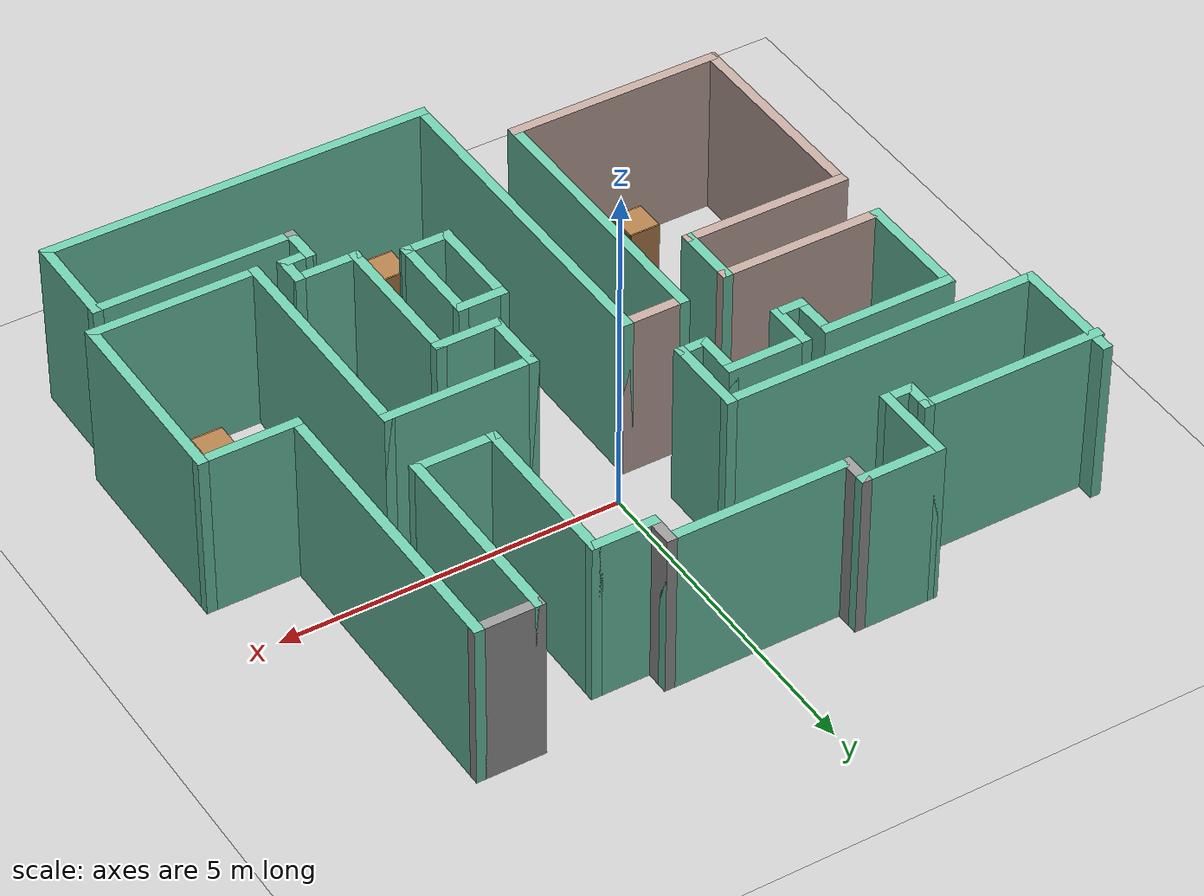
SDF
<sdf version="1.6">
 <world name="default">
  <light name="sun" type="directional">
   <pose>0 0 10 0 -0 0</pose>
   <diffuse>0.8 0.8 0.8 1</diffuse>
   <specular>0.2 0.2 0.2 1</specular>
   <attenuation>
    <range>1000</range>
    <constant>0.9</constant>
    <linear>0.01</linear>
    <quadratic>0.001</quadratic>
   </attenuation>
   <direction>-0.5 0.1 -0.9</direction>
  </light>
  <model name="ground_plane">
   <static>1</static>
   <link name="link">
    <collision name="collision">
     <geometry><plane><normal>0 0 1</normal><size>100 100</size></plane></geometry>
     <surface><friction><ode><mu>100</mu><mu2>50</mu2></ode></friction></surface>
    </collision>
    <visual name="visual">
     <cast_shadows>0</cast_shadows>
     <geometry><plane><normal>0 0 1</normal><size>100 100</size></plane></geometry>
     <material>
      <script><uri>file://media/materials/scripts/gazebo.material</uri><name>Gazebo/Grey</name></script>
     </material>
    </visual>
   </link>
  </model>
  <gravity>0 0 -9.8</gravity>
  <magnetic_field>6e-06 2.3e-05 -4.2e-05</magnetic_field>
  <atmosphere type="adiabatic"/>
  <physics name="default_physics" default="0" type="ode">
   <max_step_size>0.001</max_step_size>
   <real_time_factor>1</real_time_factor>
   <real_time_update_rate>1000</real_time_update_rate>
  </physics>
  <scene><ambient>0.4 0.4 0.4 1</ambient><background>0.7 0.7 0.7 1</background><shadows>1</shadows></scene>
  <spherical_coordinates>
   <surface_model>EARTH_WGS84</surface_model>
   <latitude_deg>0</latitude_deg>
   <longitude_deg>0</longitude_deg>
   <elevation>0</elevation>
   <heading_deg>0</heading_deg>
  </spherical_coordinates>
  <model name="map_127">
   <pose>0.044681 -1.03252 0 0 -0 0</pose>
   <link name="Wall_0">
    <collision name="Wall_0_Collision">
     <geometry><box><size>3.25 0.15 2.5</size></box></geometry>
     <pose>0 0 1.25 0 -0 0</pose>
    </collision>
    <visual name="Wall_0_Visual">
     <pose>0 0 1.25 0 -0 0</pose>
     <geometry><box><size>3.25 0.15 2.5</size></box></geometry>
     <material>
      <script><uri>file://media/materials/scripts/gazebo.material</uri><name>Gazebo/Grey</name></script>
      <ambient>0.760784 0.662745 0.627451 1</ambient>
     </material>
     <meta><layer>0</layer></meta>
    </visual>
    <pose>-2.85 -3.575 0 0 -0 3.14159</pose>
   </link>
   <link name="Wall_1">
    <collision name="Wall_1_Collision">
     <geometry><box><size>3.25 0.15 2.5</size></box></geometry>
     <pose>0 0 1.25 0 -0 0</pose>
    </collision>
    <visual name="Wall_1_Visual">
     <pose>0 0 1.25 0 -0 0</pose>
     <geometry><box><size>3.25 0.15 2.5</size></box></geometry>
     <material>
      <script><uri>file://media/materials/scripts/gazebo.material</uri><name>Gazebo/Grey</name></script>
      <ambient>0.760784 0.662745 0.627451 1</ambient>
     </material>
     <meta><layer>0</layer></meta>
    </visual>
    <pose>-4.4 -2.025 0 0 -0 1.5708</pose>
   </link>
   <link name="Wall_10">
    <collision name="Wall_10_Collision">
     <geometry><box><size>1.25 0.15 2.5</size></box></geometry>
     <pose>0 0 1.25 0 -0 0</pose>
    </collision>
    <visual name="Wall_10_Visual">
     <pose>0 0 1.25 0 -0 0</pose>
     <geometry><box><size>1.25 0.15 2.5</size></box></geometry>
     <material>
      <script><uri>file://media/materials/scripts/gazebo.material</uri><name>Gazebo/Grey</name></script>
      <ambient>0.435294 0.796078 0.67451 1</ambient>
     </material>
     <meta><layer>0</layer></meta>
    </visual>
    <pose>-1.65 1.975 0 0 -0 0</pose>
   </link>
   <link name="Wall_13">
    <collision name="Wall_13_Collision">
     <geometry><box><size>0.75 0.15 2.5</size></box></geometry>
     <pose>0 0 1.25 0 -0 0</pose>
    </collision>
    <visual name="Wall_13_Visual">
     <pose>0 0 1.25 0 -0 0</pose>
     <geometry><box><size>0.75 0.15 2.5</size></box></geometry>
     <material>
      <script><uri>file://media/materials/scripts/gazebo.material</uri><name>Gazebo/Grey</name></script>
      <ambient>0.435294 0.796078 0.67451 1</ambient>
     </material>
     <meta><layer>0</layer></meta>
    </visual>
    <pose>-1.1 1.675 0 0 -0 -1.5708</pose>
   </link>
   <link name="Wall_14">
    <collision name="Wall_14_Collision">
     <geometry><box><size>0.5 0.15 2.5</size></box></geometry>
     <pose>0 0 1.25 0 -0 0</pose>
    </collision>
    <visual name="Wall_14_Visual">
     <pose>0 0 1.25 0 -0 0</pose>
     <geometry><box><size>0.5 0.15 2.5</size></box></geometry>
     <material>
      <script><uri>file://media/materials/scripts/gazebo.material</uri><name>Gazebo/Grey</name></script>
      <ambient>0.435294 0.796078 0.67451 1</ambient>
     </material>
     <meta><layer>0</layer></meta>
    </visual>
    <pose>-0.925 1.375 0 0 -0 0</pose>
   </link>
   <link name="Wall_15">
    <collision name="Wall_15_Collision">
     <geometry><box><size>1.25 0.15 2.5</size></box></geometry>
     <pose>0 0 1.25 0 -0 0</pose>
    </collision>
    <visual name="Wall_15_Visual">
     <pose>0 0 1.25 0 -0 0</pose>
     <geometry><box><size>1.25 0.15 2.5</size></box></geometry>
     <material>
      <script><uri>file://media/materials/scripts/gazebo.material</uri><name>Gazebo/Grey</name></script>
      <ambient>0.435294 0.796078 0.67451 1</ambient>
     </material>
     <meta><layer>0</layer></meta>
    </visual>
    <pose>-0.75 1.925 0 0 -0 1.5708</pose>
   </link>
   <link name="Wall_16">
    <collision name="Wall_16_Collision">
     <geometry><box><size>4.75 0.15 2.5</size></box></geometry>
     <pose>0 0 1.25 0 -0 0</pose>
    </collision>
    <visual name="Wall_16_Visual">
     <pose>0 0 1.25 0 -0 0</pose>
     <geometry><box><size>4.75 0.15 2.5</size></box></geometry>
     <material>
      <script><uri>file://media/materials/scripts/gazebo.material</uri><name>Gazebo/Grey</name></script>
      <ambient>0.435294 0.796078 0.67451 1</ambient>
     </material>
     <meta><layer>0</layer></meta>
    </visual>
    <pose>-3.05 2.475 0 0 -0 3.14159</pose>
   </link>
   <link name="Wall_17">
    <collision name="Wall_17_Collision">
     <geometry><box><size>1.75 0.15 2.5</size></box></geometry>
     <pose>0 0 1.25 0 -0 0</pose>
    </collision>
    <visual name="Wall_17_Visual">
     <pose>0 0 1.25 0 -0 0</pose>
     <geometry><box><size>1.75 0.15 2.5</size></box></geometry>
     <material>
      <script><uri>file://media/materials/scripts/gazebo.material</uri><name>Gazebo/Grey</name></script>
      <ambient>0.435294 0.796078 0.67451 1</ambient>
     </material>
     <meta><layer>0</layer></meta>
    </visual>
    <pose>-5.35 3.275 0 0 -0 1.5708</pose>
   </link>
   <link name="Wall_19">
    <collision name="Wall_19_Collision">
     <geometry><box><size>4.25 0.15 2.5</size></box></geometry>
     <pose>0 0 1.25 0 -0 0</pose>
    </collision>
    <visual name="Wall_19_Visual">
     <pose>0 0 1.25 0 -0 0</pose>
     <geometry><box><size>4.25 0.15 2.5</size></box></geometry>
     <material>
      <script><uri>file://media/materials/scripts/gazebo.material</uri><name>Gazebo/Grey</name></script>
      <ambient>0.435294 0.796078 0.67451 1</ambient>
     </material>
     <meta><layer>0</layer></meta>
    </visual>
    <pose>-1.3 -1.525 0 0 -0 1.5708</pose>
   </link>
   <link name="Wall_2">
    <collision name="Wall_2_Collision">
     <geometry><box><size>2.5 0.15 2.5</size></box></geometry>
     <pose>0 0 1.25 0 -0 0</pose>
    </collision>
    <visual name="Wall_2_Visual">
     <pose>0 0 1.25 0 -0 0</pose>
     <geometry><box><size>2.5 0.15 2.5</size></box></geometry>
     <material>
      <script><uri>file://media/materials/scripts/gazebo.material</uri><name>Gazebo/Grey</name></script>
      <ambient>0.760784 0.662745 0.627451 1</ambient>
     </material>
     <meta><layer>0</layer></meta>
    </visual>
    <pose>-3.225 -0.475 0 0 -0 0</pose>
   </link>
   <link name="Wall_20">
    <collision name="Wall_20_Collision">
     <geometry><box><size>1 0.15 2.5</size></box></geometry>
     <pose>0 0 1.25 0 -0 0</pose>
    </collision>
    <visual name="Wall_20_Visual">
     <pose>0 0 1.25 0 -0 0</pose>
     <geometry><box><size>1 0.15 2.5</size></box></geometry>
     <material>
      <script><uri>file://media/materials/scripts/gazebo.material</uri><name>Gazebo/Grey</name></script>
      <ambient>0.760784 0.662745 0.627451 1</ambient>
     </material>
     <meta><layer>0</layer></meta>
    </visual>
    <pose>-0.875 0.525 0 0 -0 0</pose>
   </link>
   <link name="Wall_21">
    <collision name="Wall_21_Collision">
     <geometry><box><size>5.25 0.15 2.5</size></box></geometry>
     <pose>0 0 1.25 0 -0 0</pose>
    </collision>
    <visual name="Wall_21_Visual">
     <pose>0 0 1.25 0 -0 0</pose>
     <geometry><box><size>5.25 0.15 2.5</size></box></geometry>
     <material>
      <script><uri>file://media/materials/scripts/gazebo.material</uri><name>Gazebo/Grey</name></script>
      <ambient>0.435294 0.796078 0.67451 1</ambient>
     </material>
     <meta><layer>0</layer></meta>
    </visual>
    <pose>-0.45 -2.025 0 0 -0 -1.5708</pose>
   </link>
   <link name="Wall_22">
    <collision name="Wall_22_Collision">
     <geometry><box><size>5.75 0.15 2.5</size></box></geometry>
     <pose>0 0 1.25 0 -0 0</pose>
    </collision>
    <visual name="Wall_22_Visual">
     <pose>0 0 1.25 0 -0 0</pose>
     <geometry><box><size>5.75 0.15 2.5</size></box></geometry>
     <material>
      <script><uri>file://media/materials/scripts/gazebo.material</uri><name>Gazebo/Grey</name></script>
      <ambient>0.435294 0.796078 0.67451 1</ambient>
     </material>
     <meta><layer>0</layer></meta>
    </visual>
    <pose>2.35 -4.575 0 0 -0 0</pose>
   </link>
   <link name="Wall_23">
    <collision name="Wall_23_Collision">
     <geometry><box><size>1.5 0.15 2.5</size></box></geometry>
     <pose>0 0 1.25 0 -0 0</pose>
    </collision>
    <visual name="Wall_23_Visual">
     <pose>0 0 1.25 0 -0 0</pose>
     <geometry><box><size>1.5 0.15 2.5</size></box></geometry>
     <material>
      <script><uri>file://media/materials/scripts/gazebo.material</uri><name>Gazebo/Grey</name></script>
      <ambient>0.435294 0.796078 0.67451 1</ambient>
     </material>
     <meta><layer>0</layer></meta>
    </visual>
    <pose>5.15 -3.9 0 0 -0 1.5708</pose>
   </link>
   <link name="Wall_24">
    <collision name="Wall_24_Collision">
     <geometry><box><size>3 0.15 2.5</size></box></geometry>
     <pose>0 0 1.25 0 -0 0</pose>
    </collision>
    <visual name="Wall_24_Visual">
     <pose>0 0 1.25 0 -0 0</pose>
     <geometry><box><size>3 0.15 2.5</size></box></geometry>
     <material>
      <script><uri>file://media/materials/scripts/gazebo.material</uri><name>Gazebo/Grey</name></script>
      <ambient>0.435294 0.796078 0.67451 1</ambient>
     </material>
     <meta><layer>0</layer></meta>
    </visual>
    <pose>3.725 -3.225 0 0 -0 3.14159</pose>
   </link>
   <link name="Wall_25">
    <collision name="Wall_25_Collision">
     <geometry><box><size>0.25 0.15 2.5</size></box></geometry>
     <pose>0 0 1.25 0 -0 0</pose>
    </collision>
    <visual name="Wall_25_Visual">
     <pose>0 0 1.25 0 -0 0</pose>
     <geometry><box><size>0.25 0.15 2.5</size></box></geometry>
     <material>
      <script><uri>file://media/materials/scripts/gazebo.material</uri><name>Gazebo/Grey</name></script>
      <ambient>1 1 1 1</ambient>
     </material>
     <meta><layer>0</layer></meta>
    </visual>
    <pose>2.3 -3.175 0 0 -0 1.5708</pose>
   </link>
   <link name="Wall_26">
    <collision name="Wall_26_Collision">
     <geometry><box><size>0.5 0.15 2.5</size></box></geometry>
     <pose>0 0 1.25 0 -0 0</pose>
    </collision>
    <visual name="Wall_26_Visual">
     <pose>0 0 1.25 0 -0 0</pose>
     <geometry><box><size>0.5 0.15 2.5</size></box></geometry>
     <material>
      <script><uri>file://media/materials/scripts/gazebo.material</uri><name>Gazebo/Grey</name></script>
      <ambient>0.435294 0.796078 0.67451 1</ambient>
     </material>
     <meta><layer>0</layer></meta>
    </visual>
    <pose>2.3 -2.95 0 0 -0 1.5708</pose>
   </link>
   <link name="Wall_27">
    <collision name="Wall_27_Collision">
     <geometry><box><size>0.5 0.15 2.5</size></box></geometry>
     <pose>0 0 1.25 0 -0 0</pose>
    </collision>
    <visual name="Wall_27_Visual">
     <pose>0 0 1.25 0 -0 0</pose>
     <geometry><box><size>0.5 0.15 2.5</size></box></geometry>
     <material>
      <script><uri>file://media/materials/scripts/gazebo.material</uri><name>Gazebo/Grey</name></script>
      <ambient>0.435294 0.796078 0.67451 1</ambient>
     </material>
     <meta><layer>0</layer></meta>
    </visual>
    <pose>2.475 -2.775 0 0 -0 0</pose>
   </link>
   <link name="Wall_3">
    <collision name="Wall_3_Collision">
     <geometry><box><size>1 0.15 2.5</size></box></geometry>
     <pose>0 0 1.25 0 -0 0</pose>
    </collision>
    <visual name="Wall_3_Visual">
     <pose>0 0 1.25 0 -0 0</pose>
     <geometry><box><size>1 0.15 2.5</size></box></geometry>
     <material>
      <script><uri>file://media/materials/scripts/gazebo.material</uri><name>Gazebo/Grey</name></script>
      <ambient>0.435294 0.796078 0.67451 1</ambient>
     </material>
     <meta><layer>0</layer></meta>
    </visual>
    <pose>-2.05 -0.05 0 0 -0 1.5708</pose>
   </link>
   <link name="Wall_30">
    <collision name="Wall_30_Collision">
     <geometry><box><size>0.5 0.15 2.5</size></box></geometry>
     <pose>0 0 1.25 0 -0 0</pose>
    </collision>
    <visual name="Wall_30_Visual">
     <pose>0 0 1.25 0 -0 0</pose>
     <geometry><box><size>0.5 0.15 2.5</size></box></geometry>
     <material>
      <script><uri>file://media/materials/scripts/gazebo.material</uri><name>Gazebo/Grey</name></script>
      <ambient>0.435294 0.796078 0.67451 1</ambient>
     </material>
     <meta><layer>0</layer></meta>
    </visual>
    <pose>2.65 -2.6 0 0 -0 1.5708</pose>
   </link>
   <link name="Wall_31">
    <collision name="Wall_31_Collision">
     <geometry><box><size>1 0.15 2.5</size></box></geometry>
     <pose>0 0 1.25 0 -0 0</pose>
    </collision>
    <visual name="Wall_31_Visual">
     <pose>0 0 1.25 0 -0 0</pose>
     <geometry><box><size>1 0.15 2.5</size></box></geometry>
     <material>
      <script><uri>file://media/materials/scripts/gazebo.material</uri><name>Gazebo/Grey</name></script>
      <ambient>0.435294 0.796078 0.67451 1</ambient>
     </material>
     <meta><layer>0</layer></meta>
    </visual>
    <pose>2.225 -2.425 0 0 -0 3.14159</pose>
   </link>
   <link name="Wall_32">
    <collision name="Wall_32_Collision">
     <geometry><box><size>2.25 0.15 2.5</size></box></geometry>
     <pose>0 0 1.25 0 -0 0</pose>
    </collision>
    <visual name="Wall_32_Visual">
     <pose>0 0 1.25 0 -0 0</pose>
     <geometry><box><size>2.25 0.15 2.5</size></box></geometry>
     <material>
      <script><uri>file://media/materials/scripts/gazebo.material</uri><name>Gazebo/Grey</name></script>
      <ambient>0.435294 0.796078 0.67451 1</ambient>
     </material>
     <meta><layer>0</layer></meta>
    </visual>
    <pose>1.8 -1.375 0 0 -0 1.5708</pose>
   </link>
   <link name="Wall_33">
    <collision name="Wall_33_Collision">
     <geometry><box><size>1 0.15 2.5</size></box></geometry>
     <pose>0 0 1.25 0 -0 0</pose>
    </collision>
    <visual name="Wall_33_Visual">
     <pose>0 0 1.25 0 -0 0</pose>
     <geometry><box><size>1 0.15 2.5</size></box></geometry>
     <material>
      <script><uri>file://media/materials/scripts/gazebo.material</uri><name>Gazebo/Grey</name></script>
      <ambient>0.435294 0.796078 0.67451 1</ambient>
     </material>
     <meta><layer>0</layer></meta>
    </visual>
    <pose>1.375 -0.325 0 0 -0 3.14159</pose>
   </link>
   <link name="Wall_34">
    <collision name="Wall_34_Collision">
     <geometry><box><size>1 0.15 2.5</size></box></geometry>
     <pose>0 0 1.25 0 -0 0</pose>
    </collision>
    <visual name="Wall_34_Visual">
     <pose>0 0 1.25 0 -0 0</pose>
     <geometry><box><size>1 0.15 2.5</size></box></geometry>
     <material>
      <script><uri>file://media/materials/scripts/gazebo.material</uri><name>Gazebo/Grey</name></script>
      <ambient>0.435294 0.796078 0.67451 1</ambient>
     </material>
     <meta><layer>0</layer></meta>
    </visual>
    <pose>0.95 0.1 0 0 -0 1.5708</pose>
   </link>
   <link name="Wall_35">
    <collision name="Wall_35_Collision">
     <geometry><box><size>2.25 0.15 2.5</size></box></geometry>
     <pose>0 0 1.25 0 -0 0</pose>
    </collision>
    <visual name="Wall_35_Visual">
     <pose>0 0 1.25 0 -0 0</pose>
     <geometry><box><size>2.25 0.15 2.5</size></box></geometry>
     <material>
      <script><uri>file://media/materials/scripts/gazebo.material</uri><name>Gazebo/Grey</name></script>
      <ambient>0.435294 0.796078 0.67451 1</ambient>
     </material>
     <meta><layer>0</layer></meta>
    </visual>
    <pose>2 0.525 0 0 -0 0</pose>
   </link>
   <link name="Wall_36">
    <collision name="Wall_36_Collision">
     <geometry><box><size>3.5 0.15 2.5</size></box></geometry>
     <pose>0 0 1.25 0 -0 0</pose>
    </collision>
    <visual name="Wall_36_Visual">
     <pose>0 0 1.25 0 -0 0</pose>
     <geometry><box><size>3.5 0.15 2.5</size></box></geometry>
     <material>
      <script><uri>file://media/materials/scripts/gazebo.material</uri><name>Gazebo/Grey</name></script>
      <ambient>0.435294 0.796078 0.67451 1</ambient>
     </material>
     <meta><layer>0</layer></meta>
    </visual>
    <pose>3.05 -1.15 0 0 -0 -1.5708</pose>
   </link>
   <link name="Wall_37">
    <collision name="Wall_37_Collision">
     <geometry><box><size>2.5 0.15 2.5</size></box></geometry>
     <pose>0 0 1.25 0 -0 0</pose>
    </collision>
    <visual name="Wall_37_Visual">
     <pose>0 0 1.25 0 -0 0</pose>
     <geometry><box><size>2.5 0.15 2.5</size></box></geometry>
     <material>
      <script><uri>file://media/materials/scripts/gazebo.material</uri><name>Gazebo/Grey</name></script>
      <ambient>0.435294 0.796078 0.67451 1</ambient>
     </material>
     <meta><layer>0</layer></meta>
    </visual>
    <pose>4.225 -2.825 0 0 -0 0</pose>
   </link>
   <link name="Wall_38">
    <collision name="Wall_38_Collision">
     <geometry><box><size>3 0.15 2.5</size></box></geometry>
     <pose>0 0 1.25 0 -0 0</pose>
    </collision>
    <visual name="Wall_38_Visual">
     <pose>0 0 1.25 0 -0 0</pose>
     <geometry><box><size>3 0.15 2.5</size></box></geometry>
     <material>
      <script><uri>file://media/materials/scripts/gazebo.material</uri><name>Gazebo/Grey</name></script>
      <ambient>0.435294 0.796078 0.67451 1</ambient>
     </material>
     <meta><layer>0</layer></meta>
    </visual>
    <pose>5.4 -1.4 0 0 -0 1.5708</pose>
   </link>
   <link name="Wall_39">
    <collision name="Wall_39_Collision">
     <geometry><box><size>1.5 0.15 2.5</size></box></geometry>
     <pose>0 0 1.25 0 -0 0</pose>
    </collision>
    <visual name="Wall_39_Visual">
     <pose>0 0 1.25 0 -0 0</pose>
     <geometry><box><size>1.5 0.15 2.5</size></box></geometry>
     <material>
      <script><uri>file://media/materials/scripts/gazebo.material</uri><name>Gazebo/Grey</name></script>
      <ambient>0.435294 0.796078 0.67451 1</ambient>
     </material>
     <meta><layer>0</layer></meta>
    </visual>
    <pose>4.725 0.025 0 0 -0 3.14159</pose>
   </link>
   <link name="Wall_4">
    <collision name="Wall_4_Collision">
     <geometry><box><size>2.5 0.15 2.5</size></box></geometry>
     <pose>0 0 1.25 0 -0 0</pose>
    </collision>
    <visual name="Wall_4_Visual">
     <pose>0 0 1.25 0 -0 0</pose>
     <geometry><box><size>2.5 0.15 2.5</size></box></geometry>
     <material>
      <script><uri>file://media/materials/scripts/gazebo.material</uri><name>Gazebo/Grey</name></script>
      <ambient>0.760784 0.662745 0.627451 1</ambient>
     </material>
     <meta><layer>0</layer></meta>
    </visual>
    <pose>-3.225 0.375 0 0 -0 3.14159</pose>
   </link>
   <link name="Wall_41">
    <collision name="Wall_41_Collision">
     <geometry><box><size>4.5 0.15 2.5</size></box></geometry>
     <pose>0 0 1.25 0 -0 0</pose>
    </collision>
    <visual name="Wall_41_Visual">
     <pose>0 0 1.25 0 -0 0</pose>
     <geometry><box><size>4.5 0.15 2.5</size></box></geometry>
     <material>
      <script><uri>file://media/materials/scripts/gazebo.material</uri><name>Gazebo/Grey</name></script>
      <ambient>0.435294 0.796078 0.67451 1</ambient>
     </material>
     <meta><layer>0</layer></meta>
    </visual>
    <pose>4.05 2.2 0 0 -0 1.5708</pose>
   </link>
   <link name="Wall_42">
    <collision name="Wall_42_Collision">
     <geometry><box><size>1 0.15 2.5</size></box></geometry>
     <pose>0 0 1.25 0 -0 0</pose>
    </collision>
    <visual name="Wall_42_Visual">
     <pose>0 0 1.25 0 -0 0</pose>
     <geometry><box><size>1 0.15 2.5</size></box></geometry>
     <material>
      <script><uri>file://media/materials/scripts/gazebo.material</uri><name>Gazebo/Grey</name></script>
      <ambient>1 1 1 1</ambient>
     </material>
     <meta><layer>0</layer></meta>
    </visual>
    <pose>3.625 4.375 0 0 -0 3.14159</pose>
   </link>
   <link name="Wall_43">
    <collision name="Wall_43_Collision">
     <geometry><box><size>3 0.15 2.5</size></box></geometry>
     <pose>0 0 1.25 0 -0 0</pose>
    </collision>
    <visual name="Wall_43_Visual">
     <pose>0 0 1.25 0 -0 0</pose>
     <geometry><box><size>3 0.15 2.5</size></box></geometry>
     <material>
      <script><uri>file://media/materials/scripts/gazebo.material</uri><name>Gazebo/Grey</name></script>
      <ambient>0.435294 0.796078 0.67451 1</ambient>
     </material>
     <meta><layer>0</layer></meta>
    </visual>
    <pose>3.2 2.95 0 0 -0 -1.5708</pose>
   </link>
   <link name="Wall_44">
    <collision name="Wall_44_Collision">
     <geometry><box><size>1.25 0.15 2.5</size></box></geometry>
     <pose>0 0 1.25 0 -0 0</pose>
    </collision>
    <visual name="Wall_44_Visual">
     <pose>0 0 1.25 0 -0 0</pose>
     <geometry><box><size>1.25 0.15 2.5</size></box></geometry>
     <material>
      <script><uri>file://media/materials/scripts/gazebo.material</uri><name>Gazebo/Grey</name></script>
      <ambient>0.435294 0.796078 0.67451 1</ambient>
     </material>
     <meta><layer>0</layer></meta>
    </visual>
    <pose>2.65 1.525 0 0 -0 3.14159</pose>
   </link>
   <link name="Wall_45">
    <collision name="Wall_45_Collision">
     <geometry><box><size>2.5 0.15 2.5</size></box></geometry>
     <pose>0 0 1.25 0 -0 0</pose>
    </collision>
    <visual name="Wall_45_Visual">
     <pose>0 0 1.25 0 -0 0</pose>
     <geometry><box><size>2.5 0.15 2.5</size></box></geometry>
     <material>
      <script><uri>file://media/materials/scripts/gazebo.material</uri><name>Gazebo/Grey</name></script>
      <ambient>0.435294 0.796078 0.67451 1</ambient>
     </material>
     <meta><layer>0</layer></meta>
    </visual>
    <pose>2.1 2.7 0 0 -0 1.5708</pose>
   </link>
   <link name="Wall_46">
    <collision name="Wall_46_Collision">
     <geometry><box><size>1 0.15 2.5</size></box></geometry>
     <pose>0 0 1.25 0 -0 0</pose>
    </collision>
    <visual name="Wall_46_Visual">
     <pose>0 0 1.25 0 -0 0</pose>
     <geometry><box><size>1 0.15 2.5</size></box></geometry>
     <material>
      <script><uri>file://media/materials/scripts/gazebo.material</uri><name>Gazebo/Grey</name></script>
      <ambient>0.435294 0.796078 0.67451 1</ambient>
     </material>
     <meta><layer>0</layer></meta>
    </visual>
    <pose>1.675 3.875 0 0 -0 3.14159</pose>
   </link>
   <link name="Wall_47">
    <collision name="Wall_47_Collision">
     <geometry><box><size>0.5 0.15 2.5</size></box></geometry>
     <pose>0 0 1.25 0 -0 0</pose>
    </collision>
    <visual name="Wall_47_Visual">
     <pose>0 0 1.25 0 -0 0</pose>
     <geometry><box><size>0.5 0.15 2.5</size></box></geometry>
     <material>
      <script><uri>file://media/materials/scripts/gazebo.material</uri><name>Gazebo/Grey</name></script>
      <ambient>1 1 1 1</ambient>
     </material>
     <meta><layer>0</layer></meta>
    </visual>
    <pose>1.25 4.05 0 0 -0 1.5708</pose>
   </link>
   <link name="Wall_48">
    <collision name="Wall_48_Collision">
     <geometry><box><size>2.75 0.15 2.5</size></box></geometry>
     <pose>0 0 1.25 0 -0 0</pose>
    </collision>
    <visual name="Wall_48_Visual">
     <pose>0 0 1.25 0 -0 0</pose>
     <geometry><box><size>2.75 0.15 2.5</size></box></geometry>
     <material>
      <script><uri>file://media/materials/scripts/gazebo.material</uri><name>Gazebo/Grey</name></script>
      <ambient>0.435294 0.796078 0.67451 1</ambient>
     </material>
     <meta><layer>0</layer></meta>
    </visual>
    <pose>-0.05 4.225 0 0 -0 3.14159</pose>
   </link>
   <link name="Wall_49">
    <collision name="Wall_49_Collision">
     <geometry><box><size>0.5 0.15 2.5</size></box></geometry>
     <pose>0 0 1.25 0 -0 0</pose>
    </collision>
    <visual name="Wall_49_Visual">
     <pose>0 0 1.25 0 -0 0</pose>
     <geometry><box><size>0.5 0.15 2.5</size></box></geometry>
     <material>
      <script><uri>file://media/materials/scripts/gazebo.material</uri><name>Gazebo/Grey</name></script>
      <ambient>1 1 1 1</ambient>
     </material>
     <meta><layer>0</layer></meta>
    </visual>
    <pose>-1.35 4.4 0 0 -0 1.5708</pose>
   </link>
   <link name="Wall_5">
    <collision name="Wall_5_Collision">
     <geometry><box><size>1.75 0.15 2.5</size></box></geometry>
     <pose>0 0 1.25 0 -0 0</pose>
    </collision>
    <visual name="Wall_5_Visual">
     <pose>0 0 1.25 0 -0 0</pose>
     <geometry><box><size>1.75 0.15 2.5</size></box></geometry>
     <material>
      <script><uri>file://media/materials/scripts/gazebo.material</uri><name>Gazebo/Grey</name></script>
      <ambient>0.435294 0.796078 0.67451 1</ambient>
     </material>
     <meta><layer>0</layer></meta>
    </visual>
    <pose>-4.4 1.175 0 0 -0 1.5708</pose>
   </link>
   <link name="Wall_50">
    <collision name="Wall_50_Collision">
     <geometry><box><size>1.25 0.15 2.5</size></box></geometry>
     <pose>0 0 1.25 0 -0 0</pose>
    </collision>
    <visual name="Wall_50_Visual">
     <pose>0 0 1.25 0 -0 0</pose>
     <geometry><box><size>1.25 0.15 2.5</size></box></geometry>
     <material>
      <script><uri>file://media/materials/scripts/gazebo.material</uri><name>Gazebo/Grey</name></script>
      <ambient>0.435294 0.796078 0.67451 1</ambient>
     </material>
     <meta><layer>0</layer></meta>
    </visual>
    <pose>-1.9 4.575 0 0 -0 3.14159</pose>
   </link>
   <link name="Wall_51">
    <collision name="Wall_51_Collision">
     <geometry><box><size>1.25 0.15 2.5</size></box></geometry>
     <pose>0 0 1.25 0 -0 0</pose>
    </collision>
    <visual name="Wall_51_Visual">
     <pose>0 0 1.25 0 -0 0</pose>
     <geometry><box><size>1.25 0.15 2.5</size></box></geometry>
     <material>
      <script><uri>file://media/materials/scripts/gazebo.material</uri><name>Gazebo/Grey</name></script>
      <ambient>0.435294 0.796078 0.67451 1</ambient>
     </material>
     <meta><layer>0</layer></meta>
    </visual>
    <pose>-2.45 4.025 0 0 -0 -1.5708</pose>
   </link>
   <link name="Wall_52">
    <collision name="Wall_52_Collision">
     <geometry><box><size>0.5 0.15 2.5</size></box></geometry>
     <pose>0 0 1.25 0 -0 0</pose>
    </collision>
    <visual name="Wall_52_Visual">
     <pose>0 0 1.25 0 -0 0</pose>
     <geometry><box><size>0.5 0.15 2.5</size></box></geometry>
     <material>
      <script><uri>file://media/materials/scripts/gazebo.material</uri><name>Gazebo/Grey</name></script>
      <ambient>0.435294 0.796078 0.67451 1</ambient>
     </material>
     <meta><layer>0</layer></meta>
    </visual>
    <pose>-2.625 3.475 0 0 -0 3.14159</pose>
   </link>
   <link name="Wall_53">
    <collision name="Wall_53_Collision">
     <geometry><box><size>0.5 0.15 2.5</size></box></geometry>
     <pose>0 0 1.25 0 -0 0</pose>
    </collision>
    <visual name="Wall_53_Visual">
     <pose>0 0 1.25 0 -0 0</pose>
     <geometry><box><size>0.5 0.15 2.5</size></box></geometry>
     <material>
      <script><uri>file://media/materials/scripts/gazebo.material</uri><name>Gazebo/Grey</name></script>
      <ambient>0.435294 0.796078 0.67451 1</ambient>
     </material>
     <meta><layer>0</layer></meta>
    </visual>
    <pose>-2.8 3.65 0 0 -0 1.5708</pose>
   </link>
   <link name="Wall_54">
    <collision name="Wall_54_Collision">
     <geometry><box><size>2.75 0.15 2.5</size></box></geometry>
     <pose>0 0 1.25 0 -0 0</pose>
    </collision>
    <visual name="Wall_54_Visual">
     <pose>0 0 1.25 0 -0 0</pose>
     <geometry><box><size>2.75 0.15 2.5</size></box></geometry>
     <material>
      <script><uri>file://media/materials/scripts/gazebo.material</uri><name>Gazebo/Grey</name></script>
      <ambient>0.435294 0.796078 0.67451 1</ambient>
     </material>
     <meta><layer>0</layer></meta>
    </visual>
    <pose>-4.1 3.825 0 0 -0 3.14159</pose>
   </link>
   <link name="Wall_56">
    <collision name="Wall_56_Collision">
     <geometry><box><size>1.5 0.15 2.5</size></box></geometry>
     <pose>0 0 1.25 0 -0 0</pose>
    </collision>
    <visual name="Wall_56_Visual">
     <pose>0 0 1.25 0 -0 0</pose>
     <geometry><box><size>1.5 0.15 2.5</size></box></geometry>
     <material>
      <script><uri>file://media/materials/scripts/gazebo.material</uri><name>Gazebo/Grey</name></script>
      <ambient>0.435294 0.796078 0.67451 1</ambient>
     </material>
     <meta><layer>0</layer></meta>
    </visual>
    <pose>0.579182 -1.49665 0 0 -0 -1.5708</pose>
   </link>
   <link name="Wall_57">
    <collision name="Wall_57_Collision">
     <geometry><box><size>0.75 0.15 2.5</size></box></geometry>
     <pose>0 0 1.25 0 -0 0</pose>
    </collision>
    <visual name="Wall_57_Visual">
     <pose>0 0 1.25 0 -0 0</pose>
     <geometry><box><size>0.75 0.15 2.5</size></box></geometry>
     <material>
      <script><uri>file://media/materials/scripts/gazebo.material</uri><name>Gazebo/Grey</name></script>
      <ambient>0.435294 0.796078 0.67451 1</ambient>
     </material>
     <meta><layer>0</layer></meta>
    </visual>
    <pose>0.879182 -2.17165 0 0 -0 0</pose>
   </link>
   <link name="Wall_58">
    <collision name="Wall_58_Collision">
     <geometry><box><size>1.5 0.15 2.5</size></box></geometry>
     <pose>0 0 1.25 0 -0 0</pose>
    </collision>
    <visual name="Wall_58_Visual">
     <pose>0 0 1.25 0 -0 0</pose>
     <geometry><box><size>1.5 0.15 2.5</size></box></geometry>
     <material>
      <script><uri>file://media/materials/scripts/gazebo.material</uri><name>Gazebo/Grey</name></script>
      <ambient>0.435294 0.796078 0.67451 1</ambient>
     </material>
     <meta><layer>0</layer></meta>
    </visual>
    <pose>1.17918 -1.49665 0 0 -0 1.5708</pose>
   </link>
   <link name="Wall_59">
    <collision name="Wall_59_Collision">
     <geometry><box><size>0.75 0.15 2.5</size></box></geometry>
     <pose>0 0 1.25 0 -0 0</pose>
    </collision>
    <visual name="Wall_59_Visual">
     <pose>0 0 1.25 0 -0 0</pose>
     <geometry><box><size>0.75 0.15 2.5</size></box></geometry>
     <material>
      <script><uri>file://media/materials/scripts/gazebo.material</uri><name>Gazebo/Grey</name></script>
      <ambient>0.435294 0.796078 0.67451 1</ambient>
     </material>
     <meta><layer>0</layer></meta>
    </visual>
    <pose>0.879182 -0.821653 0 0 -0 3.14159</pose>
   </link>
   <link name="Wall_6">
    <collision name="Wall_6_Collision">
     <geometry><box><size>2 0.15 2.5</size></box></geometry>
     <pose>0 0 1.25 0 -0 0</pose>
    </collision>
    <visual name="Wall_6_Visual">
     <pose>0 0 1.25 0 -0 0</pose>
     <geometry><box><size>2 0.15 2.5</size></box></geometry>
     <material>
      <script><uri>file://media/materials/scripts/gazebo.material</uri><name>Gazebo/Grey</name></script>
      <ambient>0.435294 0.796078 0.67451 1</ambient>
     </material>
     <meta><layer>0</layer></meta>
    </visual>
    <pose>-3.475 1.975 0 0 -0 0</pose>
   </link>
   <link name="Wall_7">
    <collision name="Wall_7_Collision">
     <geometry><box><size>0.75 0.15 2.5</size></box></geometry>
     <pose>0 0 1.25 0 -0 0</pose>
    </collision>
    <visual name="Wall_7_Visual">
     <pose>0 0 1.25 0 -0 0</pose>
     <geometry><box><size>0.75 0.15 2.5</size></box></geometry>
     <material>
      <script><uri>file://media/materials/scripts/gazebo.material</uri><name>Gazebo/Grey</name></script>
      <ambient>0.435294 0.796078 0.67451 1</ambient>
     </material>
     <meta><layer>0</layer></meta>
    </visual>
    <pose>-2.55 1.675 0 0 -0 -1.5708</pose>
   </link>
   <link name="Wall_8">
    <collision name="Wall_8_Collision">
     <geometry><box><size>0.5 0.15 2.5</size></box></geometry>
     <pose>0 0 1.25 0 -0 0</pose>
    </collision>
    <visual name="Wall_8_Visual">
     <pose>0 0 1.25 0 -0 0</pose>
     <geometry><box><size>0.5 0.15 2.5</size></box></geometry>
     <material>
      <script><uri>file://media/materials/scripts/gazebo.material</uri><name>Gazebo/Grey</name></script>
      <ambient>0.435294 0.796078 0.67451 1</ambient>
     </material>
     <meta><layer>0</layer></meta>
    </visual>
    <pose>-2.375 1.375 0 0 -0 0</pose>
   </link>
   <link name="Wall_9">
    <collision name="Wall_9_Collision">
     <geometry><box><size>0.75 0.15 2.5</size></box></geometry>
     <pose>0 0 1.25 0 -0 0</pose>
    </collision>
    <visual name="Wall_9_Visual">
     <pose>0 0 1.25 0 -0 0</pose>
     <geometry><box><size>0.75 0.15 2.5</size></box></geometry>
     <material>
      <script><uri>file://media/materials/scripts/gazebo.material</uri><name>Gazebo/Grey</name></script>
      <ambient>0.435294 0.796078 0.67451 1</ambient>
     </material>
     <meta><layer>0</layer></meta>
    </visual>
    <pose>-2.2 1.675 0 0 -0 1.5708</pose>
   </link>
   <static>1</static>
  </model>
  <model name="6_Cube_StorageE">
   <link name="Wall_0">
    <pose>0 0 0.01 0 -0 0</pose>
    <inertial>
     <mass>1.6201</mass>
     <inertia><ixx>0.0119</ixx><iyy>0.0631</iyy><izz>0.0513</izz><ixy>0</ixy><ixz>0</ixz><iyz>0</iyz></inertia>
    </inertial>
    <collision name="Wall_0_Collision"><geometry><box><size>0.616 0.296 0.02</size></box></geometry></collision>
    <visual name="Wall_0_Visual">
     <geometry><box><size>0.616 0.296 0.02</size></box></geometry>
     <material>
      <script><uri>file://media/materials/scripts/gazebo.material</uri><name>Gazebo/Grey</name></script>
      <ambient>0.105882 0.0509804 0 1</ambient>
     </material>
    </visual>
   </link>
   <joint name="0_2" type="fixed">
    <pose>-0.308 0 0 0 -0 0</pose>
    <parent>Wall_2</parent>
    <child>Wall_0</child>
    <axis>
     <xyz>1 0 0</xyz>
     <use_parent_model_frame>0</use_parent_model_frame>
     <limit><lower>-1e+16</lower><upper>1e+16</upper></limit>
    </axis>
   </joint>
   <joint name="0_12" type="fixed">
    <parent>Wall_12</parent>
    <child>Wall_0</child>
    <axis>
     <xyz>0 0 1</xyz>
     <use_parent_model_frame>0</use_parent_model_frame>
     <limit><lower>-1e+16</lower><upper>1e+16</upper></limit>
    </axis>
   </joint>
   <joint name="0_4" type="fixed">
    <pose>0.308 0 0 0 -0 0</pose>
    <parent>Wall_4</parent>
    <child>Wall_0</child>
    <axis>
     <xyz>1 0 0</xyz>
     <use_parent_model_frame>0</use_parent_model_frame>
     <limit><lower>-1e+16</lower><upper>1e+16</upper></limit>
    </axis>
   </joint>
   <link name="Wall_10">
    <pose>0 0 0.61 0 -0 0</pose>
    <inertial>
     <mass>1.6201</mass>
     <inertia><ixx>0.0119</ixx><iyy>0.0631</iyy><izz>0.0513</izz><ixy>0</ixy><ixz>0</ixz><iyz>0</iyz></inertia>
    </inertial>
    <collision name="Wall_10_Collision"><geometry><box><size>0.616 0.296 0.02</size></box></geometry></collision>
    <visual name="Wall_10_Visual">
     <geometry><box><size>0.616 0.296 0.02</size></box></geometry>
     <material>
      <script><uri>file://media/materials/scripts/gazebo.material</uri><name>Gazebo/Grey</name></script>
      <ambient>0.105882 0.0509804 0 1</ambient>
     </material>
    </visual>
   </link>
   <joint name="10_2" type="fixed">
    <pose>-0.308 0 0 0 -0 0</pose>
    <parent>Wall_2</parent>
    <child>Wall_10</child>
    <axis>
     <xyz>1 0 0</xyz>
     <use_parent_model_frame>0</use_parent_model_frame>
     <limit><lower>-1e+16</lower><upper>1e+16</upper></limit>
    </axis>
   </joint>
   <joint name="10_12" type="fixed">
    <parent>Wall_12</parent>
    <child>Wall_10</child>
    <axis>
     <xyz>0 0 1</xyz>
     <use_parent_model_frame>0</use_parent_model_frame>
     <limit><lower>-1e+16</lower><upper>1e+16</upper></limit>
    </axis>
   </joint>
   <joint name="10_4" type="fixed">
    <pose>0.308 0 0 0 -0 0</pose>
    <parent>Wall_4</parent>
    <child>Wall_10</child>
    <axis>
     <xyz>1 0 0</xyz>
     <use_parent_model_frame>0</use_parent_model_frame>
     <limit><lower>-1e+16</lower><upper>1e+16</upper></limit>
    </axis>
   </joint>
   <link name="Wall_12">
    <pose>0 0 0.4575 0 -0 0</pose>
    <inertial>
     <mass>2.4065</mass>
     <inertia><ixx>0.0177</ixx><iyy>0.1855</iyy><izz>0.168</izz><ixy>0</ixy><ixz>0</ixz><iyz>0</iyz></inertia>
    </inertial>
    <collision name="Wall_12_Collision"><geometry><box><size>0.02 0.296 0.915</size></box></geometry></collision>
    <visual name="Wall_12_Visual">
     <geometry><box><size>0.02 0.296 0.915</size></box></geometry>
     <material>
      <script><uri>file://media/materials/scripts/gazebo.material</uri><name>Gazebo/Grey</name></script>
      <ambient>0.105882 0.0509804 0 1</ambient>
     </material>
    </visual>
   </link>
   <link name="Wall_2">
    <pose>-0.298 0 0.4575 0 -0 0</pose>
    <inertial>
     <mass>2.4065</mass>
     <inertia><ixx>0.0177</ixx><iyy>0.1855</iyy><izz>0.168</izz><ixy>0</ixy><ixz>0</ixz><iyz>0</iyz></inertia>
    </inertial>
    <collision name="Wall_2_Collision"><geometry><box><size>0.02 0.296 0.915</size></box></geometry></collision>
    <visual name="Wall_2_Visual">
     <geometry><box><size>0.02 0.296 0.915</size></box></geometry>
     <material>
      <script><uri>file://media/materials/scripts/gazebo.material</uri><name>Gazebo/Grey</name></script>
      <ambient>0.105882 0.0509804 0 1</ambient>
     </material>
    </visual>
   </link>
   <link name="Wall_4">
    <pose>0.298 0 0.4575 0 -0 0</pose>
    <inertial>
     <mass>2.4065</mass>
     <inertia><ixx>0.0177</ixx><iyy>0.1855</iyy><izz>0.168</izz><ixy>0</ixy><ixz>0</ixz><iyz>0</iyz></inertia>
    </inertial>
    <collision name="Wall_4_Collision"><geometry><box><size>0.02 0.296 0.915</size></box></geometry></collision>
    <visual name="Wall_4_Visual">
     <geometry><box><size>0.02 0.296 0.915</size></box></geometry>
     <material>
      <script><uri>file://media/materials/scripts/gazebo.material</uri><name>Gazebo/Grey</name></script>
      <ambient>0.105882 0.0509804 0 1</ambient>
     </material>
    </visual>
   </link>
   <link name="Wall_6">
    <pose>0 0 0.905 0 -0 0</pose>
    <inertial>
     <mass>1.6201</mass>
     <inertia><ixx>0.0119</ixx><iyy>0.0631</iyy><izz>0.0513</izz><ixy>0</ixy><ixz>0</ixz><iyz>0</iyz></inertia>
    </inertial>
    <collision name="Wall_6_Collision"><geometry><box><size>0.616 0.296 0.02</size></box></geometry></collision>
    <visual name="Wall_6_Visual">
     <geometry><box><size>0.616 0.296 0.02</size></box></geometry>
     <material>
      <script><uri>file://media/materials/scripts/gazebo.material</uri><name>Gazebo/Grey</name></script>
      <ambient>0.105882 0.0509804 0 1</ambient>
     </material>
    </visual>
   </link>
   <joint name="6_2" type="fixed">
    <pose>-0.308 0 0 0 -0 0</pose>
    <parent>Wall_2</parent>
    <child>Wall_6</child>
    <axis>
     <xyz>2 0 0</xyz>
     <use_parent_model_frame>0</use_parent_model_frame>
     <limit><lower>-1e+16</lower><upper>1e+16</upper></limit>
    </axis>
   </joint>
   <joint name="6_12" type="fixed">
    <parent>Wall_12</parent>
    <child>Wall_6</child>
    <axis>
     <xyz>0 0 1</xyz>
     <use_parent_model_frame>0</use_parent_model_frame>
     <limit><lower>-1e+16</lower><upper>1e+16</upper></limit>
    </axis>
   </joint>
   <joint name="6_4" type="fixed">
    <pose>0.308 0 0 0 -0 0</pose>
    <parent>Wall_4</parent>
    <child>Wall_6</child>
    <axis>
     <xyz>1 0 0</xyz>
     <use_parent_model_frame>0</use_parent_model_frame>
     <limit><lower>-1e+16</lower><upper>1e+16</upper></limit>
    </axis>
   </joint>
   <link name="Wall_8">
    <pose>0 0 0.305 0 -0 0</pose>
    <inertial>
     <mass>1.6201</mass>
     <inertia><ixx>0.0119</ixx><iyy>0.0631</iyy><izz>0.0513</izz><ixy>0</ixy><ixz>0</ixz><iyz>0</iyz></inertia>
    </inertial>
    <collision name="Wall_8_Collision"><geometry><box><size>0.616 0.296 0.02</size></box></geometry></collision>
    <visual name="Wall_8_Visual">
     <geometry><box><size>0.616 0.296 0.02</size></box></geometry>
     <material>
      <script><uri>file://media/materials/scripts/gazebo.material</uri><name>Gazebo/Grey</name></script>
      <ambient>0.105882 0.0509804 0 1</ambient>
     </material>
    </visual>
   </link>
   <joint name="8_2" type="fixed">
    <pose>-0.308 0 0 0 -0 0</pose>
    <parent>Wall_2</parent>
    <child>Wall_8</child>
    <axis>
     <xyz>1 0 0</xyz>
     <use_parent_model_frame>0</use_parent_model_frame>
     <limit><lower>-1e+16</lower><upper>1e+16</upper></limit>
    </axis>
   </joint>
   <joint name="8_12" type="fixed">
    <parent>Wall_12</parent>
    <child>Wall_8</child>
    <axis>
     <xyz>0 0 1</xyz>
     <use_parent_model_frame>0</use_parent_model_frame>
     <limit><lower>-1e+16</lower><upper>1e+16</upper></limit>
    </axis>
   </joint>
   <joint name="8_4" type="fixed">
    <pose>0.308 0 0 0 -0 0</pose>
    <parent>Wall_4</parent>
    <child>Wall_8</child>
    <axis>
     <xyz>1 0 0</xyz>
     <use_parent_model_frame>0</use_parent_model_frame>
     <limit><lower>-1e+16</lower><upper>1e+16</upper></limit>
    </axis>
   </joint>
   <static>1</static>
   <pose>0.386032 2.15871 0 0 -0 0</pose>
  </model>
  <model name="cabinet">
   <static>1</static>
   <link name="cabinet_bottom_plate">
    <inertial>
     <pose>0 0 -1 0 -0 0</pose>
     <inertia><ixx>2.05</ixx><ixy>0</ixy><ixz>0</ixz><iyy>2.05</iyy><iyz>0</iyz><izz>2.05</izz></inertia>
     <mass>25</mass>
    </inertial>
    <collision name="cabinet_bottom_plate_geom">
     <pose>0 0 0.01 0 -0 0</pose>
     <geometry><box><size>0.45 0.45 0.02</size></box></geometry>
    </collision>
    <visual name="cabinet_bottom_plate_geom_visual">
     <pose>0 0 0.01 0 -0 0</pose>
     <geometry><box><size>0.45 0.45 0.02</size></box></geometry>
     <material>
      <script><uri>file://media/materials/scripts/gazebo.material</uri><name>Gazebo/Wood</name></script>
     </material>
    </visual>
    <collision name="cabinet_bottom_plate_geom_cabinet_back_plate">
     <pose>0.235 0 0.51 0 -0 0</pose>
     <geometry><box><size>0.02 0.45 1.02</size></box></geometry>
    </collision>
    <visual name="cabinet_bottom_plate_geom_cabinet_back_plate_visual">
     <pose>0.235 0 0.51 0 -0 0</pose>
     <geometry><box><size>0.02 0.45 1.02</size></box></geometry>
     <material>
      <script><uri>file://media/materials/scripts/gazebo.material</uri><name>Gazebo/Wood</name></script>
     </material>
    </visual>
    <collision name="cabinet_bottom_plate_geom_cabinet_left_plate">
     <pose>0 0.235 0.51 0 -0 0</pose>
     <geometry><box><size>0.45 0.02 1.02</size></box></geometry>
    </collision>
    <visual name="cabinet_bottom_plate_geom_cabinet_left_plate_visual">
     <pose>0 0.235 0.51 0 -0 0</pose>
     <geometry><box><size>0.45 0.02 1.02</size></box></geometry>
     <material>
      <script><uri>file://media/materials/scripts/gazebo.material</uri><name>Gazebo/Wood</name></script>
     </material>
    </visual>
    <collision name="cabinet_bottom_plate_geom_cabinet_middle_plate">
     <pose>0 0 0.51 0 -0 0</pose>
     <geometry><box><size>0.45 0.45 0.02</size></box></geometry>
    </collision>
    <visual name="cabinet_bottom_plate_geom_cabinet_middle_plate_visual">
     <pose>0 0 0.51 0 -0 0</pose>
     <geometry><box><size>0.45 0.45 0.02</size></box></geometry>
     <material>
      <script><uri>file://media/materials/scripts/gazebo.material</uri><name>Gazebo/Wood</name></script>
     </material>
    </visual>
    <collision name="cabinet_bottom_plate_geom_cabinet_right_plate">
     <pose>0 -0.235 0.51 0 -0 0</pose>
     <geometry><box><size>0.45 0.02 1.02</size></box></geometry>
    </collision>
    <visual name="cabinet_bottom_plate_geom_cabinet_right_plate_visual">
     <pose>0 -0.235 0.51 0 -0 0</pose>
     <geometry><box><size>0.45 0.02 1.02</size></box></geometry>
     <material>
      <script><uri>file://media/materials/scripts/gazebo.material</uri><name>Gazebo/Wood</name></script>
     </material>
    </visual>
    <collision name="cabinet_bottom_plate_geom_cabinet_top_plate">
     <pose>0 0 1.01 0 -0 0</pose>
     <geometry><box><size>0.45 0.45 0.02</size></box></geometry>
    </collision>
    <visual name="cabinet_bottom_plate_geom_cabinet_top_plate_visual">
     <pose>0 0 1.01 0 -0 0</pose>
     <geometry><box><size>0.45 0.45 0.02</size></box></geometry>
     <material>
      <script><uri>file://media/materials/scripts/gazebo.material</uri><name>Gazebo/Wood</name></script>
     </material>
    </visual>
   </link>
   <pose>-2.58968 -3.71177 0 0 -0 0</pose>
  </model>
  <model name="cabinet_0">
   <static>1</static>
   <link name="cabinet_bottom_plate">
    <inertial>
     <pose>0 0 -1 0 -0 0</pose>
     <inertia><ixx>2.05</ixx><ixy>0</ixy><ixz>0</ixz><iyy>2.05</iyy><iyz>0</iyz><izz>2.05</izz></inertia>
     <mass>25</mass>
    </inertial>
    <collision name="cabinet_bottom_plate_geom">
     <pose>0 0 0.01 0 -0 0</pose>
     <geometry><box><size>0.45 0.45 0.02</size></box></geometry>
    </collision>
    <visual name="cabinet_bottom_plate_geom_visual">
     <pose>0 0 0.01 0 -0 0</pose>
     <geometry><box><size>0.45 0.45 0.02</size></box></geometry>
     <material>
      <script><uri>file://media/materials/scripts/gazebo.material</uri><name>Gazebo/Wood</name></script>
     </material>
    </visual>
    <collision name="cabinet_bottom_plate_geom_cabinet_back_plate">
     <pose>0.235 0 0.51 0 -0 0</pose>
     <geometry><box><size>0.02 0.45 1.02</size></box></geometry>
    </collision>
    <visual name="cabinet_bottom_plate_geom_cabinet_back_plate_visual">
     <pose>0.235 0 0.51 0 -0 0</pose>
     <geometry><box><size>0.02 0.45 1.02</size></box></geometry>
     <material>
      <script><uri>file://media/materials/scripts/gazebo.material</uri><name>Gazebo/Wood</name></script>
     </material>
    </visual>
    <collision name="cabinet_bottom_plate_geom_cabinet_left_plate">
     <pose>0 0.235 0.51 0 -0 0</pose>
     <geometry><box><size>0.45 0.02 1.02</size></box></geometry>
    </collision>
    <visual name="cabinet_bottom_plate_geom_cabinet_left_plate_visual">
     <pose>0 0.235 0.51 0 -0 0</pose>
     <geometry><box><size>0.45 0.02 1.02</size></box></geometry>
     <material>
      <script><uri>file://media/materials/scripts/gazebo.material</uri><name>Gazebo/Wood</name></script>
     </material>
    </visual>
    <collision name="cabinet_bottom_plate_geom_cabinet_middle_plate">
     <pose>0 0 0.51 0 -0 0</pose>
     <geometry><box><size>0.45 0.45 0.02</size></box></geometry>
    </collision>
    <visual name="cabinet_bottom_plate_geom_cabinet_middle_plate_visual">
     <pose>0 0 0.51 0 -0 0</pose>
     <geometry><box><size>0.45 0.45 0.02</size></box></geometry>
     <material>
      <script><uri>file://media/materials/scripts/gazebo.material</uri><name>Gazebo/Wood</name></script>
     </material>
    </visual>
    <collision name="cabinet_bottom_plate_geom_cabinet_right_plate">
     <pose>0 -0.235 0.51 0 -0 0</pose>
     <geometry><box><size>0.45 0.02 1.02</size></box></geometry>
    </collision>
    <visual name="cabinet_bottom_plate_geom_cabinet_right_plate_visual">
     <pose>0 -0.235 0.51 0 -0 0</pose>
     <geometry><box><size>0.45 0.02 1.02</size></box></geometry>
     <material>
      <script><uri>file://media/materials/scripts/gazebo.material</uri><name>Gazebo/Wood</name></script>
     </material>
    </visual>
    <collision name="cabinet_bottom_plate_geom_cabinet_top_plate">
     <pose>0 0 1.01 0 -0 0</pose>
     <geometry><box><size>0.45 0.45 0.02</size></box></geometry>
    </collision>
    <visual name="cabinet_bottom_plate_geom_cabinet_top_plate_visual">
     <pose>0 0 1.01 0 -0 0</pose>
     <geometry><box><size>0.45 0.45 0.02</size></box></geometry>
     <material>
      <script><uri>file://media/materials/scripts/gazebo.material</uri><name>Gazebo/Wood</name></script>
     </material>
    </visual>
   </link>
   <pose>-3.67039 -2.23164 0 0 -0 0</pose>
  </model>
  <model name="cabinet_2">
   <static>1</static>
   <link name="cabinet_bottom_plate">
    <inertial>
     <pose>0 0 -1 0 -0 0</pose>
     <inertia><ixx>2.05</ixx><ixy>0</ixy><ixz>0</ixz><iyy>2.05</iyy><iyz>0</iyz><izz>2.05</izz></inertia>
     <mass>25</mass>
    </inertial>
    <collision name="cabinet_bottom_plate_geom">
     <pose>0 0 0.01 0 -0 0</pose>
     <geometry><box><size>0.45 0.45 0.02</size></box></geometry>
    </collision>
    <visual name="cabinet_bottom_plate_geom_visual">
     <pose>0 0 0.01 0 -0 0</pose>
     <geometry><box><size>0.45 0.45 0.02</size></box></geometry>
     <material>
      <script><uri>file://media/materials/scripts/gazebo.material</uri><name>Gazebo/Wood</name></script>
     </material>
    </visual>
    <collision name="cabinet_bottom_plate_geom_cabinet_back_plate">
     <pose>0.235 0 0.51 0 -0 0</pose>
     <geometry><box><size>0.02 0.45 1.02</size></box></geometry>
    </collision>
    <visual name="cabinet_bottom_plate_geom_cabinet_back_plate_visual">
     <pose>0.235 0 0.51 0 -0 0</pose>
     <geometry><box><size>0.02 0.45 1.02</size></box></geometry>
     <material>
      <script><uri>file://media/materials/scripts/gazebo.material</uri><name>Gazebo/Wood</name></script>
     </material>
    </visual>
    <collision name="cabinet_bottom_plate_geom_cabinet_left_plate">
     <pose>0 0.235 0.51 0 -0 0</pose>
     <geometry><box><size>0.45 0.02 1.02</size></box></geometry>
    </collision>
    <visual name="cabinet_bottom_plate_geom_cabinet_left_plate_visual">
     <pose>0 0.235 0.51 0 -0 0</pose>
     <geometry><box><size>0.45 0.02 1.02</size></box></geometry>
     <material>
      <script><uri>file://media/materials/scripts/gazebo.material</uri><name>Gazebo/Wood</name></script>
     </material>
    </visual>
    <collision name="cabinet_bottom_plate_geom_cabinet_middle_plate">
     <pose>0 0 0.51 0 -0 0</pose>
     <geometry><box><size>0.45 0.45 0.02</size></box></geometry>
    </collision>
    <visual name="cabinet_bottom_plate_geom_cabinet_middle_plate_visual">
     <pose>0 0 0.51 0 -0 0</pose>
     <geometry><box><size>0.45 0.45 0.02</size></box></geometry>
     <material>
      <script><uri>file://media/materials/scripts/gazebo.material</uri><name>Gazebo/Wood</name></script>
     </material>
    </visual>
    <collision name="cabinet_bottom_plate_geom_cabinet_right_plate">
     <pose>0 -0.235 0.51 0 -0 0</pose>
     <geometry><box><size>0.45 0.02 1.02</size></box></geometry>
    </collision>
    <visual name="cabinet_bottom_plate_geom_cabinet_right_plate_visual">
     <pose>0 -0.235 0.51 0 -0 0</pose>
     <geometry><box><size>0.45 0.02 1.02</size></box></geometry>
     <material>
      <script><uri>file://media/materials/scripts/gazebo.material</uri><name>Gazebo/Wood</name></script>
     </material>
    </visual>
    <collision name="cabinet_bottom_plate_geom_cabinet_top_plate">
     <pose>0 0 1.01 0 -0 0</pose>
     <geometry><box><size>0.45 0.45 0.02</size></box></geometry>
    </collision>
    <visual name="cabinet_bottom_plate_geom_cabinet_top_plate_visual">
     <pose>0 0 1.01 0 -0 0</pose>
     <geometry><box><size>0.45 0.45 0.02</size></box></geometry>
     <material>
      <script><uri>file://media/materials/scripts/gazebo.material</uri><name>Gazebo/Wood</name></script>
     </material>
    </visual>
   </link>
   <pose>4.39162 -2.68919 0 0 -0 0</pose>
  </model>
  <model name="cabinet_3">
   <static>1</static>
   <link name="cabinet_bottom_plate">
    <inertial>
     <pose>0 0 -1 0 -0 0</pose>
     <inertia><ixx>2.05</ixx><ixy>0</ixy><ixz>0</ixz><iyy>2.05</iyy><iyz>0</iyz><izz>2.05</izz></inertia>
     <mass>25</mass>
    </inertial>
    <collision name="cabinet_bottom_plate_geom">
     <pose>0 0 0.01 0 -0 0</pose>
     <geometry><box><size>0.45 0.45 0.02</size></box></geometry>
    </collision>
    <visual name="cabinet_bottom_plate_geom_visual">
     <pose>0 0 0.01 0 -0 0</pose>
     <geometry><box><size>0.45 0.45 0.02</size></box></geometry>
     <material>
      <script><uri>file://media/materials/scripts/gazebo.material</uri><name>Gazebo/Wood</name></script>
     </material>
    </visual>
    <collision name="cabinet_bottom_plate_geom_cabinet_back_plate">
     <pose>0.235 0 0.51 0 -0 0</pose>
     <geometry><box><size>0.02 0.45 1.02</size></box></geometry>
    </collision>
    <visual name="cabinet_bottom_plate_geom_cabinet_back_plate_visual">
     <pose>0.235 0 0.51 0 -0 0</pose>
     <geometry><box><size>0.02 0.45 1.02</size></box></geometry>
     <material>
      <script><uri>file://media/materials/scripts/gazebo.material</uri><name>Gazebo/Wood</name></script>
     </material>
    </visual>
    <collision name="cabinet_bottom_plate_geom_cabinet_left_plate">
     <pose>0 0.235 0.51 0 -0 0</pose>
     <geometry><box><size>0.45 0.02 1.02</size></box></geometry>
    </collision>
    <visual name="cabinet_bottom_plate_geom_cabinet_left_plate_visual">
     <pose>0 0.235 0.51 0 -0 0</pose>
     <geometry><box><size>0.45 0.02 1.02</size></box></geometry>
     <material>
      <script><uri>file://media/materials/scripts/gazebo.material</uri><name>Gazebo/Wood</name></script>
     </material>
    </visual>
    <collision name="cabinet_bottom_plate_geom_cabinet_middle_plate">
     <pose>0 0 0.51 0 -0 0</pose>
     <geometry><box><size>0.45 0.45 0.02</size></box></geometry>
    </collision>
    <visual name="cabinet_bottom_plate_geom_cabinet_middle_plate_visual">
     <pose>0 0 0.51 0 -0 0</pose>
     <geometry><box><size>0.45 0.45 0.02</size></box></geometry>
     <material>
      <script><uri>file://media/materials/scripts/gazebo.material</uri><name>Gazebo/Wood</name></script>
     </material>
    </visual>
    <collision name="cabinet_bottom_plate_geom_cabinet_right_plate">
     <pose>0 -0.235 0.51 0 -0 0</pose>
     <geometry><box><size>0.45 0.02 1.02</size></box></geometry>
    </collision>
    <visual name="cabinet_bottom_plate_geom_cabinet_right_plate_visual">
     <pose>0 -0.235 0.51 0 -0 0</pose>
     <geometry><box><size>0.45 0.02 1.02</size></box></geometry>
     <material>
      <script><uri>file://media/materials/scripts/gazebo.material</uri><name>Gazebo/Wood</name></script>
     </material>
    </visual>
    <collision name="cabinet_bottom_plate_geom_cabinet_top_plate">
     <pose>0 0 1.01 0 -0 0</pose>
     <geometry><box><size>0.45 0.45 0.02</size></box></geometry>
    </collision>
    <visual name="cabinet_bottom_plate_geom_cabinet_top_plate_visual">
     <pose>0 0 1.01 0 -0 0</pose>
     <geometry><box><size>0.45 0.45 0.02</size></box></geometry>
     <material>
      <script><uri>file://media/materials/scripts/gazebo.material</uri><name>Gazebo/Wood</name></script>
     </material>
    </visual>
   </link>
   <pose>0.75098 -4.6391 0 0 -0 0</pose>
  </model>
 </world>
</sdf>
